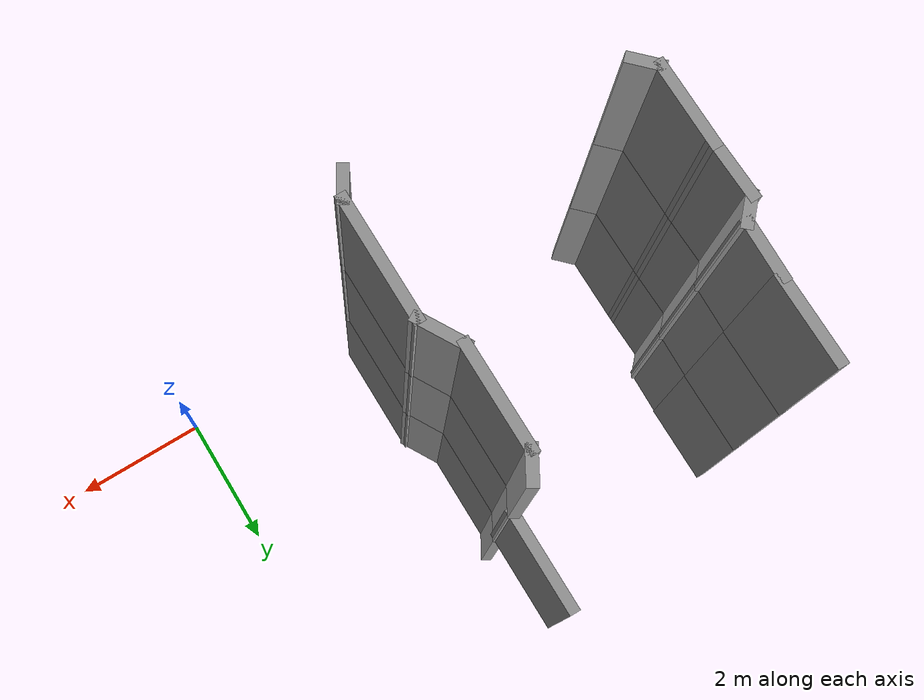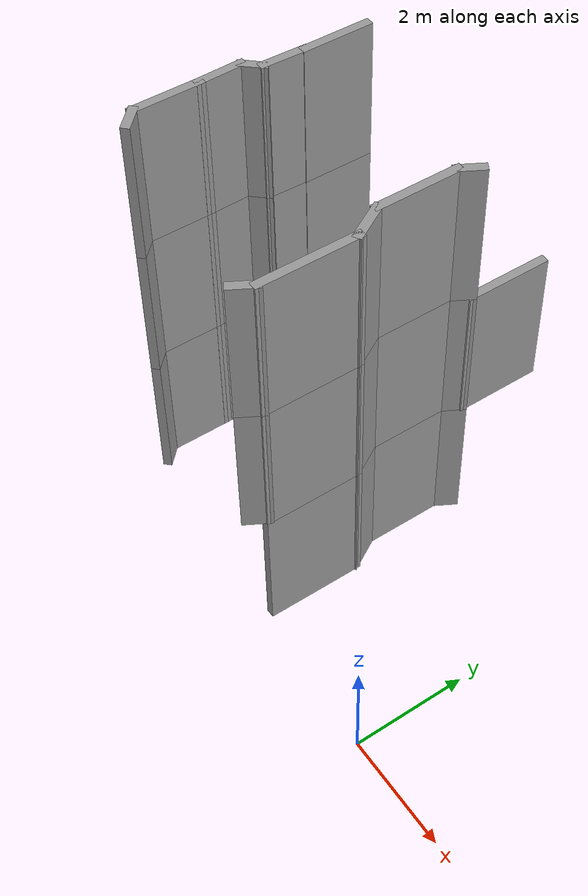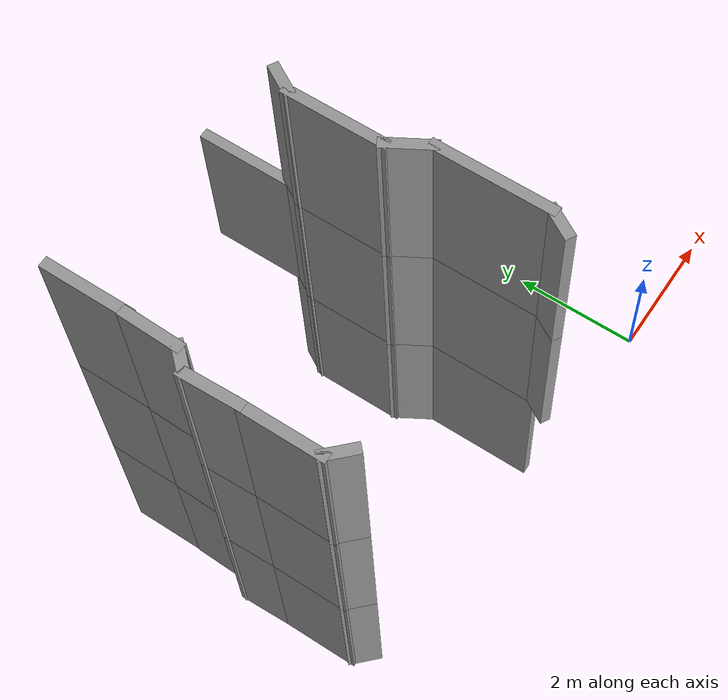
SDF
<sdf version="1.6">
 <model name="use_case1_stacked">
  <pose>0.822713 6.83476 0 0 -0 0</pose>
  <link name="Wall_283">
   <collision name="Wall_283_Collision">
    <geometry><box><size>0.5 0.15 2.5</size></box></geometry>
    <pose>0 0 1.25 0 -0 0</pose>
   </collision>
   <visual name="Wall_283_Visual">
    <pose>0 0 1.25 0 -0 0</pose>
    <geometry><box><size>0.5 0.15 2.5</size></box></geometry>
    <material>
     <script><uri>file://media/materials/scripts/gazebo.material</uri><name>Gazebo/Grey</name></script>
     <ambient>1 1 1 1</ambient>
    </material>
   </visual>
   <pose>-7.38916 -6.18881 2.5 0 -0 2.35619</pose>
  </link>
  <link name="Wall_284">
   <collision name="Wall_284_Collision">
    <geometry><box><size>1.25 0.15 2.5</size></box></geometry>
    <pose>0 0 1.25 0 -0 0</pose>
   </collision>
   <visual name="Wall_284_Visual">
    <pose>0 0 1.25 0 -0 0</pose>
    <geometry><box><size>1.25 0.15 2.5</size></box></geometry>
    <material>
     <script><uri>file://media/materials/scripts/gazebo.material</uri><name>Gazebo/Grey</name></script>
     <ambient>1 1 1 1</ambient>
    </material>
   </visual>
   <pose>-7.5129 -5.51507 2.5 0 -0 1.5708</pose>
  </link>
  <link name="Wall_285">
   <collision name="Wall_285_Collision">
    <geometry><box><size>0.881015 0.15 2.5</size></box></geometry>
    <pose>0 0 1.25 0 -0 0</pose>
   </collision>
   <visual name="Wall_285_Visual">
    <pose>0 0 1.25 0 -0 0</pose>
    <geometry><box><size>0.881015 0.15 2.5</size></box></geometry>
    <material>
     <script><uri>file://media/materials/scripts/gazebo.material</uri><name>Gazebo/Grey</name></script>
     <ambient>1 1 1 1</ambient>
    </material>
   </visual>
   <pose>-7.52296 -4.5997 2.5 0 -0 1.59831</pose>
  </link>
  <link name="Wall_286">
   <collision name="Wall_286_Collision">
    <geometry><box><size>0.486079 0.15 2.5</size></box></geometry>
    <pose>0 0 1.25 0 -0 0</pose>
   </collision>
   <visual name="Wall_286_Visual">
    <pose>0 0 1.25 0 -0 0</pose>
    <geometry><box><size>0.486079 0.15 2.5</size></box></geometry>
    <material>
     <script><uri>file://media/materials/scripts/gazebo.material</uri><name>Gazebo/Grey</name></script>
     <ambient>1 1 1 1</ambient>
    </material>
   </visual>
   <pose>-7.40927 -4.11059 2.5 0 -0 0.82773</pose>
  </link>
  <link name="Wall_287">
   <collision name="Wall_287_Collision">
    <geometry><box><size>0.869543 0.15 2.5</size></box></geometry>
    <pose>0 0 1.25 0 -0 0</pose>
   </collision>
   <visual name="Wall_287_Visual">
    <pose>0 0 1.25 0 -0 0</pose>
    <geometry><box><size>0.869543 0.15 2.5</size></box></geometry>
    <material>
     <script><uri>file://media/materials/scripts/gazebo.material</uri><name>Gazebo/Grey</name></script>
     <ambient>1 1 1 1</ambient>
    </material>
   </visual>
   <pose>-7.29558 -3.62721 2.5 0 -0 1.54284</pose>
  </link>
  <link name="Wall_288">
   <collision name="Wall_288_Collision">
    <geometry><box><size>1.25 0.15 2.5</size></box></geometry>
    <pose>0 0 1.25 0 -0 0</pose>
   </collision>
   <visual name="Wall_288_Visual">
    <pose>0 0 1.25 0 -0 0</pose>
    <geometry><box><size>1.25 0.15 2.5</size></box></geometry>
    <material>
     <script><uri>file://media/materials/scripts/gazebo.material</uri><name>Gazebo/Grey</name></script>
     <ambient>1 1 1 1</ambient>
    </material>
   </visual>
   <pose>-7.27547 -2.71758 2.5 0 -0 1.5708</pose>
  </link>
  <link name="Wall_299">
   <collision name="Wall_299_Collision">
    <geometry><box><size>1.5 0.15 2.5</size></box></geometry>
    <pose>0 0 1.25 0 -0 0</pose>
   </collision>
   <visual name="Wall_299_Visual">
    <pose>0 0 1.25 0 -0 0</pose>
    <geometry><box><size>1.5 0.15 2.5</size></box></geometry>
    <material>
     <script><uri>file://media/materials/scripts/gazebo.material</uri><name>Gazebo/Grey</name></script>
     <ambient>1 1 1 1</ambient>
    </material>
   </visual>
   <pose>-3.70883 -2.08774 2.5 0 0 -1.5708</pose>
  </link>
  <link name="Wall_300">
   <collision name="Wall_300_Collision">
    <geometry><box><size>0.5 0.15 2.5</size></box></geometry>
    <pose>0 0 1.25 0 -0 0</pose>
   </collision>
   <visual name="Wall_300_Visual">
    <pose>0 0 1.25 0 -0 0</pose>
    <geometry><box><size>0.5 0.15 2.5</size></box></geometry>
    <material>
     <script><uri>file://media/materials/scripts/gazebo.material</uri><name>Gazebo/Grey</name></script>
     <ambient>1 1 1 1</ambient>
    </material>
   </visual>
   <pose>-3.79633 -2.91429 2.5 0 0 -2.0944</pose>
  </link>
  <link name="Wall_301">
   <collision name="Wall_301_Collision">
    <geometry><box><size>1.5 0.15 2.5</size></box></geometry>
    <pose>0 0 1.25 0 -0 0</pose>
   </collision>
   <visual name="Wall_301_Visual">
    <pose>0 0 1.25 0 -0 0</pose>
    <geometry><box><size>1.5 0.15 2.5</size></box></geometry>
    <material>
     <script><uri>file://media/materials/scripts/gazebo.material</uri><name>Gazebo/Grey</name></script>
     <ambient>1 1 1 1</ambient>
    </material>
   </visual>
   <pose>-3.88383 -3.74085 2.5 0 0 -1.5708</pose>
  </link>
  <link name="Wall_302">
   <collision name="Wall_302_Collision">
    <geometry><box><size>0.75 0.15 2.5</size></box></geometry>
    <pose>0 0 1.25 0 -0 0</pose>
   </collision>
   <visual name="Wall_302_Visual">
    <pose>0 0 1.25 0 -0 0</pose>
    <geometry><box><size>0.75 0.15 2.5</size></box></geometry>
    <material>
     <script><uri>file://media/materials/scripts/gazebo.material</uri><name>Gazebo/Grey</name></script>
     <ambient>1 1 1 1</ambient>
    </material>
   </visual>
   <pose>-3.73383 -4.67565 2.5 0 0 -1.0472</pose>
  </link>
  <link name="Wall_303">
   <collision name="Wall_303_Collision">
    <geometry><box><size>1.75 0.15 2.5</size></box></geometry>
    <pose>0 0 1.25 0 -0 0</pose>
   </collision>
   <visual name="Wall_303_Visual">
    <pose>0 0 1.25 0 -0 0</pose>
    <geometry><box><size>1.75 0.15 2.5</size></box></geometry>
    <material>
     <script><uri>file://media/materials/scripts/gazebo.material</uri><name>Gazebo/Grey</name></script>
     <ambient>1 1 1 1</ambient>
    </material>
   </visual>
   <pose>-3.58383 -5.73546 2.5 0 0 -1.5708</pose>
  </link>
  <link name="Wall_304">
   <collision name="Wall_304_Collision">
    <geometry><box><size>0.5 0.15 2.5</size></box></geometry>
    <pose>0 0 1.25 0 -0 0</pose>
   </collision>
   <visual name="Wall_304_Visual">
    <pose>0 0 1.25 0 -0 0</pose>
    <geometry><box><size>0.5 0.15 2.5</size></box></geometry>
    <material>
     <script><uri>file://media/materials/scripts/gazebo.material</uri><name>Gazebo/Grey</name></script>
     <ambient>1 1 1 1</ambient>
    </material>
   </visual>
   <pose>-3.67133 -6.68702 2.5 0 0 -2.0944</pose>
  </link>
  <link name="Wall_350">
   <collision name="Wall_350_Collision">
    <geometry><box><size>0.5 0.15 2.5</size></box></geometry>
    <pose>0 0 1.25 0 -0 0</pose>
   </collision>
   <visual name="Wall_350_Visual">
    <pose>0 0 1.25 0 -0 0</pose>
    <geometry><box><size>0.5 0.15 2.5</size></box></geometry>
    <material>
     <script><uri>file://media/materials/scripts/gazebo.material</uri><name>Gazebo/Grey</name></script>
     <ambient>1 1 1 1</ambient>
    </material>
   </visual>
   <pose>-7.38916 -6.18881 5 0 -0 2.35619</pose>
  </link>
  <link name="Wall_351">
   <collision name="Wall_351_Collision">
    <geometry><box><size>1.25 0.15 2.5</size></box></geometry>
    <pose>0 0 1.25 0 -0 0</pose>
   </collision>
   <visual name="Wall_351_Visual">
    <pose>0 0 1.25 0 -0 0</pose>
    <geometry><box><size>1.25 0.15 2.5</size></box></geometry>
    <material>
     <script><uri>file://media/materials/scripts/gazebo.material</uri><name>Gazebo/Grey</name></script>
     <ambient>1 1 1 1</ambient>
    </material>
   </visual>
   <pose>-7.5129 -5.51507 5 0 -0 1.5708</pose>
  </link>
  <link name="Wall_352">
   <collision name="Wall_352_Collision">
    <geometry><box><size>0.881015 0.15 2.5</size></box></geometry>
    <pose>0 0 1.25 0 -0 0</pose>
   </collision>
   <visual name="Wall_352_Visual">
    <pose>0 0 1.25 0 -0 0</pose>
    <geometry><box><size>0.881015 0.15 2.5</size></box></geometry>
    <material>
     <script><uri>file://media/materials/scripts/gazebo.material</uri><name>Gazebo/Grey</name></script>
     <ambient>1 1 1 1</ambient>
    </material>
   </visual>
   <pose>-7.52296 -4.5997 5 0 -0 1.59831</pose>
  </link>
  <link name="Wall_353">
   <collision name="Wall_353_Collision">
    <geometry><box><size>0.486079 0.15 2.5</size></box></geometry>
    <pose>0 0 1.25 0 -0 0</pose>
   </collision>
   <visual name="Wall_353_Visual">
    <pose>0 0 1.25 0 -0 0</pose>
    <geometry><box><size>0.486079 0.15 2.5</size></box></geometry>
    <material>
     <script><uri>file://media/materials/scripts/gazebo.material</uri><name>Gazebo/Grey</name></script>
     <ambient>1 1 1 1</ambient>
    </material>
   </visual>
   <pose>-7.40927 -4.11059 5 0 -0 0.82773</pose>
  </link>
  <link name="Wall_354">
   <collision name="Wall_354_Collision">
    <geometry><box><size>0.869543 0.15 2.5</size></box></geometry>
    <pose>0 0 1.25 0 -0 0</pose>
   </collision>
   <visual name="Wall_354_Visual">
    <pose>0 0 1.25 0 -0 0</pose>
    <geometry><box><size>0.869543 0.15 2.5</size></box></geometry>
    <material>
     <script><uri>file://media/materials/scripts/gazebo.material</uri><name>Gazebo/Grey</name></script>
     <ambient>1 1 1 1</ambient>
    </material>
   </visual>
   <pose>-7.29558 -3.62721 5 0 -0 1.54284</pose>
  </link>
  <link name="Wall_355">
   <collision name="Wall_355_Collision">
    <geometry><box><size>1.25 0.15 2.5</size></box></geometry>
    <pose>0 0 1.25 0 -0 0</pose>
   </collision>
   <visual name="Wall_355_Visual">
    <pose>0 0 1.25 0 -0 0</pose>
    <geometry><box><size>1.25 0.15 2.5</size></box></geometry>
    <material>
     <script><uri>file://media/materials/scripts/gazebo.material</uri><name>Gazebo/Grey</name></script>
     <ambient>1 1 1 1</ambient>
    </material>
   </visual>
   <pose>-7.27547 -2.71758 5 0 -0 1.5708</pose>
  </link>
  <link name="Wall_367">
   <collision name="Wall_367_Collision">
    <geometry><box><size>0.5 0.15 2.5</size></box></geometry>
    <pose>0 0 1.25 0 -0 0</pose>
   </collision>
   <visual name="Wall_367_Visual">
    <pose>0 0 1.25 0 -0 0</pose>
    <geometry><box><size>0.5 0.15 2.5</size></box></geometry>
    <material>
     <script><uri>file://media/materials/scripts/gazebo.material</uri><name>Gazebo/Grey</name></script>
     <ambient>1 1 1 1</ambient>
    </material>
   </visual>
   <pose>-3.79633 -2.91429 5 0 0 -2.0944</pose>
  </link>
  <link name="Wall_368">
   <collision name="Wall_368_Collision">
    <geometry><box><size>1.5 0.15 2.5</size></box></geometry>
    <pose>0 0 1.25 0 -0 0</pose>
   </collision>
   <visual name="Wall_368_Visual">
    <pose>0 0 1.25 0 -0 0</pose>
    <geometry><box><size>1.5 0.15 2.5</size></box></geometry>
    <material>
     <script><uri>file://media/materials/scripts/gazebo.material</uri><name>Gazebo/Grey</name></script>
     <ambient>1 1 1 1</ambient>
    </material>
   </visual>
   <pose>-3.88383 -3.74085 5 0 0 -1.5708</pose>
  </link>
  <link name="Wall_369">
   <collision name="Wall_369_Collision">
    <geometry><box><size>0.75 0.15 2.5</size></box></geometry>
    <pose>0 0 1.25 0 -0 0</pose>
   </collision>
   <visual name="Wall_369_Visual">
    <pose>0 0 1.25 0 -0 0</pose>
    <geometry><box><size>0.75 0.15 2.5</size></box></geometry>
    <material>
     <script><uri>file://media/materials/scripts/gazebo.material</uri><name>Gazebo/Grey</name></script>
     <ambient>1 1 1 1</ambient>
    </material>
   </visual>
   <pose>-3.73383 -4.67565 5 0 0 -1.0472</pose>
  </link>
  <link name="Wall_370">
   <collision name="Wall_370_Collision">
    <geometry><box><size>1.75 0.15 2.5</size></box></geometry>
    <pose>0 0 1.25 0 -0 0</pose>
   </collision>
   <visual name="Wall_370_Visual">
    <pose>0 0 1.25 0 -0 0</pose>
    <geometry><box><size>1.75 0.15 2.5</size></box></geometry>
    <material>
     <script><uri>file://media/materials/scripts/gazebo.material</uri><name>Gazebo/Grey</name></script>
     <ambient>1 1 1 1</ambient>
    </material>
   </visual>
   <pose>-3.58383 -5.73546 5 0 0 -1.5708</pose>
  </link>
  <link name="Wall_371">
   <collision name="Wall_371_Collision">
    <geometry><box><size>0.5 0.15 2.5</size></box></geometry>
    <pose>0 0 1.25 0 -0 0</pose>
   </collision>
   <visual name="Wall_371_Visual">
    <pose>0 0 1.25 0 -0 0</pose>
    <geometry><box><size>0.5 0.15 2.5</size></box></geometry>
    <material>
     <script><uri>file://media/materials/scripts/gazebo.material</uri><name>Gazebo/Grey</name></script>
     <ambient>1 1 1 1</ambient>
    </material>
   </visual>
   <pose>-3.67133 -6.68702 5 0 0 -2.0944</pose>
  </link>
  <link name="Wall_68">
   <collision name="Wall_68_Collision">
    <geometry><box><size>0.5 0.15 2.5</size></box></geometry>
    <pose>0 0 1.25 0 -0 0</pose>
   </collision>
   <visual name="Wall_68_Visual">
    <pose>0 0 1.25 0 -0 0</pose>
    <geometry><box><size>0.5 0.15 2.5</size></box></geometry>
    <material>
     <script><uri>file://media/materials/scripts/gazebo.material</uri><name>Gazebo/Grey</name></script>
     <ambient>1 1 1 1</ambient>
    </material>
   </visual>
   <pose>-7.38916 -6.18881 0 0 -0 2.35619</pose>
  </link>
  <link name="Wall_69">
   <collision name="Wall_69_Collision">
    <geometry><box><size>1.25 0.15 2.5</size></box></geometry>
    <pose>0 0 1.25 0 -0 0</pose>
   </collision>
   <visual name="Wall_69_Visual">
    <pose>0 0 1.25 0 -0 0</pose>
    <geometry><box><size>1.25 0.15 2.5</size></box></geometry>
    <material>
     <script><uri>file://media/materials/scripts/gazebo.material</uri><name>Gazebo/Grey</name></script>
     <ambient>1 1 1 1</ambient>
    </material>
   </visual>
   <pose>-7.5129 -5.51507 0 0 -0 1.5708</pose>
  </link>
  <link name="Wall_71">
   <collision name="Wall_71_Collision">
    <geometry><box><size>0.880807 0.15 2.5</size></box></geometry>
    <pose>0 0 1.25 0 -0 0</pose>
   </collision>
   <visual name="Wall_71_Visual">
    <pose>0 0 1.25 0 -0 0</pose>
    <geometry><box><size>0.880807 0.15 2.5</size></box></geometry>
    <material>
     <script><uri>file://media/materials/scripts/gazebo.material</uri><name>Gazebo/Grey</name></script>
     <ambient>1 1 1 1</ambient>
    </material>
   </visual>
   <pose>-7.52296 -4.5997 0 0 -0 1.59831</pose>
  </link>
  <link name="Wall_73">
   <collision name="Wall_73_Collision">
    <geometry><box><size>0.486079 0.15 2.5</size></box></geometry>
    <pose>0 0 1.25 0 -0 0</pose>
   </collision>
   <visual name="Wall_73_Visual">
    <pose>0 0 1.25 0 -0 0</pose>
    <geometry><box><size>0.486079 0.15 2.5</size></box></geometry>
    <material>
     <script><uri>file://media/materials/scripts/gazebo.material</uri><name>Gazebo/Grey</name></script>
     <ambient>1 1 1 1</ambient>
    </material>
   </visual>
   <pose>-7.40927 -4.11059 0 0 -0 0.82773</pose>
  </link>
  <link name="Wall_74">
   <collision name="Wall_74_Collision">
    <geometry><box><size>0.869332 0.15 2.5</size></box></geometry>
    <pose>0 0 1.25 0 -0 0</pose>
   </collision>
   <visual name="Wall_74_Visual">
    <pose>0 0 1.25 0 -0 0</pose>
    <geometry><box><size>0.869332 0.15 2.5</size></box></geometry>
    <material>
     <script><uri>file://media/materials/scripts/gazebo.material</uri><name>Gazebo/Grey</name></script>
     <ambient>1 1 1 1</ambient>
    </material>
   </visual>
   <pose>-7.29558 -3.62721 0 0 -0 1.54284</pose>
  </link>
  <link name="Wall_76">
   <collision name="Wall_76_Collision">
    <geometry><box><size>1.25 0.15 2.5</size></box></geometry>
    <pose>0 0 1.25 0 -0 0</pose>
   </collision>
   <visual name="Wall_76_Visual">
    <pose>0 0 1.25 0 -0 0</pose>
    <geometry><box><size>1.25 0.15 2.5</size></box></geometry>
    <material>
     <script><uri>file://media/materials/scripts/gazebo.material</uri><name>Gazebo/Grey</name></script>
     <ambient>1 1 1 1</ambient>
    </material>
   </visual>
   <pose>-7.27547 -2.71758 0 0 -0 1.5708</pose>
  </link>
  <link name="Wall_94">
   <collision name="Wall_94_Collision">
    <geometry><box><size>0.5 0.15 2.5</size></box></geometry>
    <pose>0 0 1.25 0 -0 0</pose>
   </collision>
   <visual name="Wall_94_Visual">
    <pose>0 0 1.25 0 -0 0</pose>
    <geometry><box><size>0.5 0.15 2.5</size></box></geometry>
    <material>
     <script><uri>file://media/materials/scripts/gazebo.material</uri><name>Gazebo/Grey</name></script>
     <ambient>1 1 1 1</ambient>
    </material>
   </visual>
   <pose>-3.79633 -2.91429 0 0 0 -2.0944</pose>
  </link>
  <link name="Wall_95">
   <collision name="Wall_95_Collision">
    <geometry><box><size>1.5 0.15 2.5</size></box></geometry>
    <pose>0 0 1.25 0 -0 0</pose>
   </collision>
   <visual name="Wall_95_Visual">
    <pose>0 0 1.25 0 -0 0</pose>
    <geometry><box><size>1.5 0.15 2.5</size></box></geometry>
    <material>
     <script><uri>file://media/materials/scripts/gazebo.material</uri><name>Gazebo/Grey</name></script>
     <ambient>1 1 1 1</ambient>
    </material>
   </visual>
   <pose>-3.88383 -3.74085 0 0 0 -1.5708</pose>
  </link>
  <link name="Wall_97">
   <collision name="Wall_97_Collision">
    <geometry><box><size>0.75 0.15 2.5</size></box></geometry>
    <pose>0 0 1.25 0 -0 0</pose>
   </collision>
   <visual name="Wall_97_Visual">
    <pose>0 0 1.25 0 -0 0</pose>
    <geometry><box><size>0.75 0.15 2.5</size></box></geometry>
    <material>
     <script><uri>file://media/materials/scripts/gazebo.material</uri><name>Gazebo/Grey</name></script>
     <ambient>1 1 1 1</ambient>
    </material>
   </visual>
   <pose>-3.73383 -4.67565 0 0 0 -1.0472</pose>
  </link>
  <link name="Wall_99">
   <collision name="Wall_99_Collision">
    <geometry><box><size>1.75 0.15 2.5</size></box></geometry>
    <pose>0 0 1.25 0 -0 0</pose>
   </collision>
   <visual name="Wall_99_Visual">
    <pose>0 0 1.25 0 -0 0</pose>
    <geometry><box><size>1.75 0.15 2.5</size></box></geometry>
    <material>
     <script><uri>file://media/materials/scripts/gazebo.material</uri><name>Gazebo/Grey</name></script>
     <ambient>1 1 1 1</ambient>
    </material>
   </visual>
   <pose>-3.58383 -5.73546 0 0 0 -1.5708</pose>
  </link>
  <static>1</static>
 </model>
</sdf>
